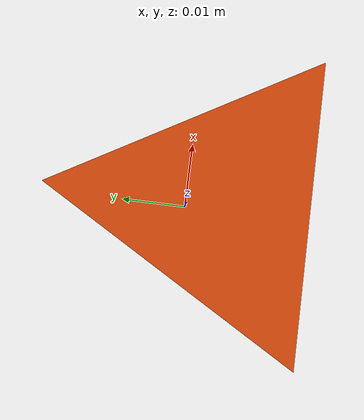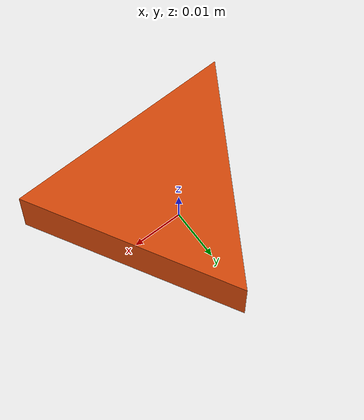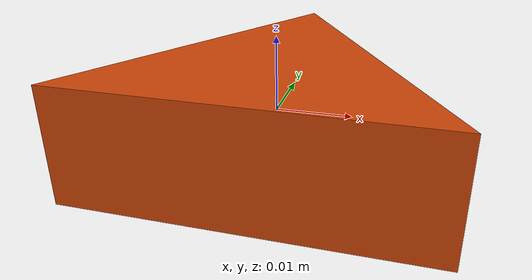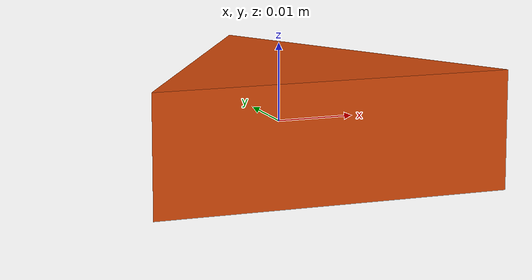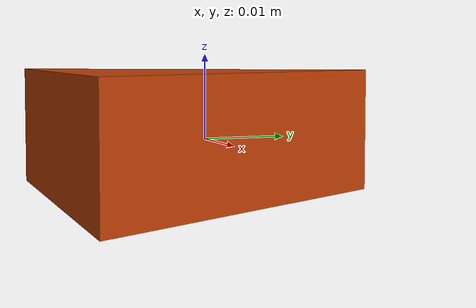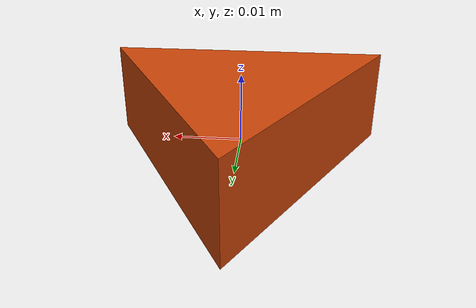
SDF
<?xml version="1.0" ?>
<sdf version="1.5">
  <model name="triangle_orange">
    <static>false</static>
    <link name="link">
      <pose>0 0 0 0 0 0</pose>
      <collision name="collision">
        <geometry>
          <mesh>
            <uri>model://triangle_orange/meshes/triangle_orange.dae</uri>
          </mesh>
        </geometry>
      </collision>
      <visual name="visual">
        <geometry>
          <mesh>
            <uri>model://triangle_orange/meshes/triangle_orange.dae</uri>
          </mesh>
        </geometry>
        <material>

        </material>
      </visual>
      <inertial>
        <mass>0.011</mass>
        <inertia> <!-- inertias are tricky to compute -->
          <!-- http://gazebosim.org/tutorials?tut=inertia&cat=build_robot -->
          <ixx>1.0e-6</ixx>       <!-- for a box: ixx = 0.083 * mass * (y*y + z*z) -->
          <ixy>0.0</ixy>         <!-- for a box: ixy = 0 -->
          <ixz>0.0</ixz>         <!-- for a box: ixz = 0 -->
          <iyy>1.0e-6</iyy>       <!-- for a box: iyy = 0.083 * mass * (x*x + z*z) -->
          <iyz>0.0</iyz>         <!-- for a box: iyz = 0 -->
          <izz>1.7e-6</izz>       <!-- for a box: izz = 0.083 * mass * (x*x + y*y) -->
        </inertia>
      </inertial>
    </link>
  </model>
</sdf>
